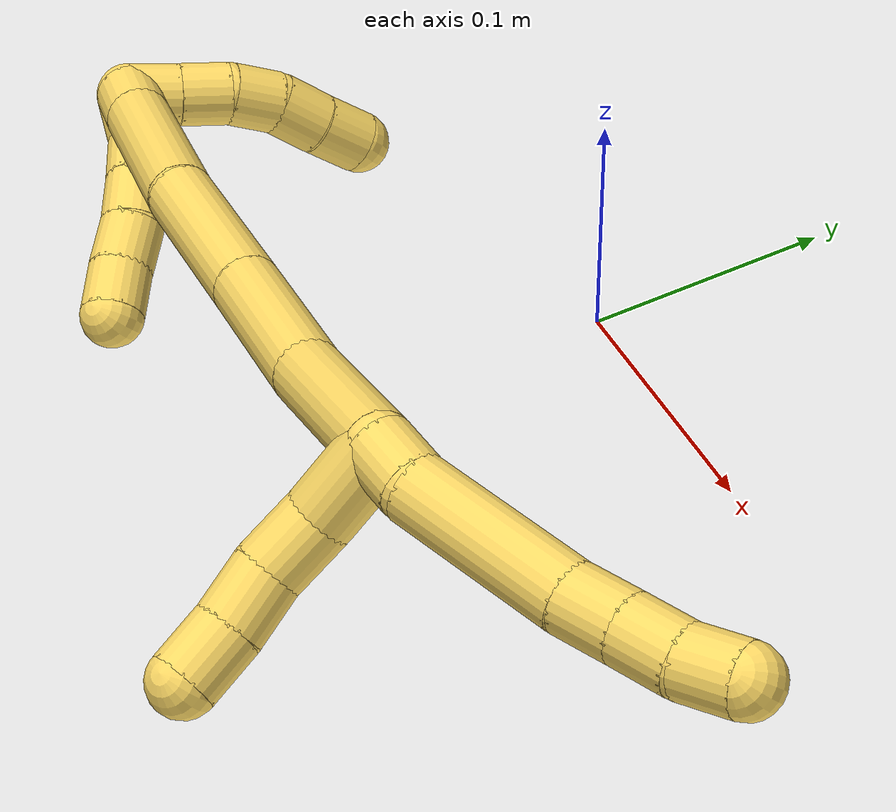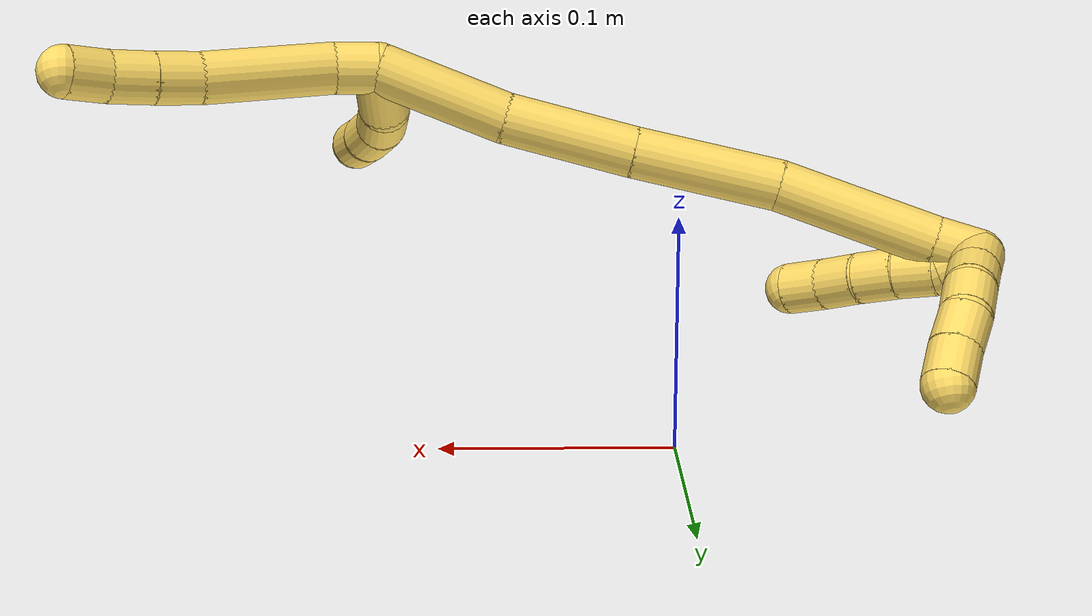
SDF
<sdf version="1.7">
 <world name="default">
  <model name="5">
   <static>0</static>
   <link name="5">
    <collision name="collision-cylinder-e_1_2_8">
     <pose>0.007673 0.007261 0.000513 -1.50023 0.811762 -0.761772</pose>
     <geometry><cylinder><radius>0.0125</radius><length>0.021153</length></cylinder></geometry>
     <surface>
      <friction><ode><mu>1.16</mu><mu2>1.16</mu2><slip1>0</slip1><slip2>0</slip2></ode></friction>
      <contact><ode><kp>1e+06</kp><kd>1</kd><max_vel>0</max_vel><min_depth>0.001</min_depth></ode></contact>
     </surface>
    </collision>
    <visual name="visual-cylinder-e_1_2_8">
     <pose>0.007673 0.007261 0.000513 -1.50023 0.811762 -0.761772</pose>
     <geometry><cylinder><radius>0.0125</radius><length>0.021153</length></cylinder></geometry>
     <material><ambient>1 0.858824 0.4 1</ambient></material>
    </visual>
    <collision name="collision-cylinder-e_2_8_9">
     <pose>0.034406 0.040207 -0.00324 -1.73541 0.631884 -0.73619</pose>
     <geometry><cylinder><radius>0.0125</radius><length>0.064536</length></cylinder></geometry>
     <surface>
      <friction><ode><mu>1.16</mu><mu2>1.16</mu2><slip1>0</slip1><slip2>0</slip2></ode></friction>
      <contact><ode><kp>1e+06</kp><kd>1</kd><max_vel>0</max_vel><min_depth>0.001</min_depth></ode></contact>
     </surface>
    </collision>
    <visual name="visual-cylinder-e_2_8_9">
     <pose>0.034406 0.040207 -0.00324 -1.73541 0.631884 -0.73619</pose>
     <geometry><cylinder><radius>0.0125</radius><length>0.064536</length></cylinder></geometry>
     <material><ambient>1 0.858824 0.4 1</ambient></material>
    </visual>
    <collision name="collision-cylinder-e_3_9_10">
     <pose>0.058918 0.07522 -0.008618 -1.68937 0.52595 -0.588754</pose>
     <geometry><cylinder><radius>0.0125</radius><length>0.021722</length></cylinder></geometry>
     <surface>
      <friction><ode><mu>1.16</mu><mu2>1.16</mu2><slip1>0</slip1><slip2>0</slip2></ode></friction>
      <contact><ode><kp>1e+06</kp><kd>1</kd><max_vel>0</max_vel><min_depth>0.001</min_depth></ode></contact>
     </surface>
    </collision>
    <visual name="visual-cylinder-e_3_9_10">
     <pose>0.058918 0.07522 -0.008618 -1.68937 0.52595 -0.588754</pose>
     <geometry><cylinder><radius>0.0125</radius><length>0.021722</length></cylinder></geometry>
     <material><ambient>1 0.858824 0.4 1</ambient></material>
    </visual>
    <collision name="collision-cylinder-e_4_10_11">
     <pose>0.069918 0.093867 -0.010402 -1.64282 0.535683 -0.573632</pose>
     <geometry><cylinder><radius>0.0125</radius><length>0.021733</length></cylinder></geometry>
     <surface>
      <friction><ode><mu>1.16</mu><mu2>1.16</mu2><slip1>0</slip1><slip2>0</slip2></ode></friction>
      <contact><ode><kp>1e+06</kp><kd>1</kd><max_vel>0</max_vel><min_depth>0.001</min_depth></ode></contact>
     </surface>
    </collision>
    <visual name="visual-cylinder-e_4_10_11">
     <pose>0.069918 0.093867 -0.010402 -1.64282 0.535683 -0.573632</pose>
     <geometry><cylinder><radius>0.0125</radius><length>0.021733</length></cylinder></geometry>
     <material><ambient>1 0.858824 0.4 1</ambient></material>
    </visual>
    <collision name="collision-cylinder-e_5_11_6">
     <pose>0.079043 0.11295 -0.011868 -1.65189 0.350315 -0.379262</pose>
     <geometry><cylinder><radius>0.0125</radius><length>0.020856</length></cylinder></geometry>
     <surface>
      <friction><ode><mu>1.16</mu><mu2>1.16</mu2><slip1>0</slip1><slip2>0</slip2></ode></friction>
      <contact><ode><kp>1e+06</kp><kd>1</kd><max_vel>0</max_vel><min_depth>0.001</min_depth></ode></contact>
     </surface>
    </collision>
    <visual name="visual-cylinder-e_5_11_6">
     <pose>0.079043 0.11295 -0.011868 -1.65189 0.350315 -0.379262</pose>
     <geometry><cylinder><radius>0.0125</radius><length>0.020856</length></cylinder></geometry>
     <material><ambient>1 0.858824 0.4 1</ambient></material>
    </visual>
    <collision name="collision-cylinder-e_1_2_12">
     <pose>0.009358 -0.01247 -0.003024 1.80873 0.630111 0.785717</pose>
     <geometry><cylinder><radius>0.0125</radius><length>0.031763</length></cylinder></geometry>
     <surface>
      <friction><ode><mu>1.16</mu><mu2>1.16</mu2><slip1>0</slip1><slip2>0</slip2></ode></friction>
      <contact><ode><kp>1e+06</kp><kd>1</kd><max_vel>0</max_vel><min_depth>0.001</min_depth></ode></contact>
     </surface>
    </collision>
    <visual name="visual-cylinder-e_1_2_12">
     <pose>0.009358 -0.01247 -0.003024 1.80873 0.630111 0.785717</pose>
     <geometry><cylinder><radius>0.0125</radius><length>0.031763</length></cylinder></geometry>
     <material><ambient>1 0.858824 0.4 1</ambient></material>
    </visual>
    <collision name="collision-cylinder-e_2_12_13">
     <pose>0.027107 -0.033375 -0.004725 1.41519 0.776715 0.673275</pose>
     <geometry><cylinder><radius>0.0125</radius><length>0.023943</length></cylinder></geometry>
     <surface>
      <friction><ode><mu>1.16</mu><mu2>1.16</mu2><slip1>0</slip1><slip2>0</slip2></ode></friction>
      <contact><ode><kp>1e+06</kp><kd>1</kd><max_vel>0</max_vel><min_depth>0.001</min_depth></ode></contact>
     </surface>
    </collision>
    <visual name="visual-cylinder-e_2_12_13">
     <pose>0.027107 -0.033375 -0.004725 1.41519 0.776715 0.673275</pose>
     <geometry><cylinder><radius>0.0125</radius><length>0.023943</length></cylinder></geometry>
     <material><ambient>1 0.858824 0.4 1</ambient></material>
    </visual>
    <collision name="collision-cylinder-e_3_13_14">
     <pose>0.04486 -0.047458 -0.001408 1.23144 1.00162 0.738906</pose>
     <geometry><cylinder><radius>0.0125</radius><length>0.022228</length></cylinder></geometry>
     <surface>
      <friction><ode><mu>1.16</mu><mu2>1.16</mu2><slip1>0</slip1><slip2>0</slip2></ode></friction>
      <contact><ode><kp>1e+06</kp><kd>1</kd><max_vel>0</max_vel><min_depth>0.001</min_depth></ode></contact>
     </surface>
    </collision>
    <visual name="visual-cylinder-e_3_13_14">
     <pose>0.04486 -0.047458 -0.001408 1.23144 1.00162 0.738906</pose>
     <geometry><cylinder><radius>0.0125</radius><length>0.022228</length></cylinder></geometry>
     <material><ambient>1 0.858824 0.4 1</ambient></material>
    </visual>
    <collision name="collision-cylinder-e_4_14_5">
     <pose>0.063006 -0.058959 0.003798 1.06878 0.920944 0.571093</pose>
     <geometry><cylinder><radius>0.0125</radius><length>0.022067</length></cylinder></geometry>
     <surface>
      <friction><ode><mu>1.16</mu><mu2>1.16</mu2><slip1>0</slip1><slip2>0</slip2></ode></friction>
      <contact><ode><kp>1e+06</kp><kd>1</kd><max_vel>0</max_vel><min_depth>0.001</min_depth></ode></contact>
     </surface>
    </collision>
    <visual name="visual-cylinder-e_4_14_5">
     <pose>0.063006 -0.058959 0.003798 1.06878 0.920944 0.571093</pose>
     <geometry><cylinder><radius>0.0125</radius><length>0.022067</length></cylinder></geometry>
     <material><ambient>1 0.858824 0.4 1</ambient></material>
    </visual>
    <collision name="collision-cylinder-e_1_2_15">
     <pose>-0.01917 -0.022744 -0.013039 2.09135 -0.63138 -1.02664</pose>
     <geometry><cylinder><radius>0.0125</radius><length>0.064955</length></cylinder></geometry>
     <surface>
      <friction><ode><mu>1.16</mu><mu2>1.16</mu2><slip1>0</slip1><slip2>0</slip2></ode></friction>
      <contact><ode><kp>1e+06</kp><kd>1</kd><max_vel>0</max_vel><min_depth>0.001</min_depth></ode></contact>
     </surface>
    </collision>
    <visual name="visual-cylinder-e_1_2_15">
     <pose>-0.01917 -0.022744 -0.013039 2.09135 -0.63138 -1.02664</pose>
     <geometry><cylinder><radius>0.0125</radius><length>0.064955</length></cylinder></geometry>
     <material><ambient>1 0.858824 0.4 1</ambient></material>
    </visual>
    <collision name="collision-cylinder-e_2_15_16">
     <pose>-0.060057 -0.066197 -0.036534 2.03836 -0.752396 -1.14139</pose>
     <geometry><cylinder><radius>0.0125</radius><length>0.063557</length></cylinder></geometry>
     <surface>
      <friction><ode><mu>1.16</mu><mu2>1.16</mu2><slip1>0</slip1><slip2>0</slip2></ode></friction>
      <contact><ode><kp>1e+06</kp><kd>1</kd><max_vel>0</max_vel><min_depth>0.001</min_depth></ode></contact>
     </surface>
    </collision>
    <visual name="visual-cylinder-e_2_15_16">
     <pose>-0.060057 -0.066197 -0.036534 2.03836 -0.752396 -1.14139</pose>
     <geometry><cylinder><radius>0.0125</radius><length>0.063557</length></cylinder></geometry>
     <material><ambient>1 0.858824 0.4 1</ambient></material>
    </visual>
    <collision name="collision-cylinder-e_3_16_17">
     <pose>-0.106548 -0.110217 -0.057527 1.99532 -0.769367 -1.12049</pose>
     <geometry><cylinder><radius>0.0125</radius><length>0.07122</length></cylinder></geometry>
     <surface>
      <friction><ode><mu>1.16</mu><mu2>1.16</mu2><slip1>0</slip1><slip2>0</slip2></ode></friction>
      <contact><ode><kp>1e+06</kp><kd>1</kd><max_vel>0</max_vel><min_depth>0.001</min_depth></ode></contact>
     </surface>
    </collision>
    <visual name="visual-cylinder-e_3_16_17">
     <pose>-0.106548 -0.110217 -0.057527 1.99532 -0.769367 -1.12049</pose>
     <geometry><cylinder><radius>0.0125</radius><length>0.07122</length></cylinder></geometry>
     <material><ambient>1 0.858824 0.4 1</ambient></material>
    </visual>
    <collision name="collision-cylinder-e_4_17_18">
     <pose>-0.157442 -0.157283 -0.084921 2.18795 -0.731004 -1.27521</pose>
     <geometry><cylinder><radius>0.0125</radius><length>0.078252</length></cylinder></geometry>
     <surface>
      <friction><ode><mu>1.16</mu><mu2>1.16</mu2><slip1>0</slip1><slip2>0</slip2></ode></friction>
      <contact><ode><kp>1e+06</kp><kd>1</kd><max_vel>0</max_vel><min_depth>0.001</min_depth></ode></contact>
     </surface>
    </collision>
    <visual name="visual-cylinder-e_4_17_18">
     <pose>-0.157442 -0.157283 -0.084921 2.18795 -0.731004 -1.27521</pose>
     <geometry><cylinder><radius>0.0125</radius><length>0.078252</length></cylinder></geometry>
     <material><ambient>1 0.858824 0.4 1</ambient></material>
    </visual>
    <collision name="collision-cylinder-e_5_18_1">
     <pose>-0.191381 -0.187399 -0.106207 2.17895 -0.789766 -1.34701</pose>
     <geometry><cylinder><radius>0.0125</radius><length>0.022016</length></cylinder></geometry>
     <surface>
      <friction><ode><mu>1.16</mu><mu2>1.16</mu2><slip1>0</slip1><slip2>0</slip2></ode></friction>
      <contact><ode><kp>1e+06</kp><kd>1</kd><max_vel>0</max_vel><min_depth>0.001</min_depth></ode></contact>
     </surface>
    </collision>
    <visual name="visual-cylinder-e_5_18_1">
     <pose>-0.191381 -0.187399 -0.106207 2.17895 -0.789766 -1.34701</pose>
     <geometry><cylinder><radius>0.0125</radius><length>0.022016</length></cylinder></geometry>
     <material><ambient>1 0.858824 0.4 1</ambient></material>
    </visual>
    <collision name="collision-cylinder-e_1_1_19">
     <pose>-0.189657 -0.191102 -0.112006 -2.04725 1.26704 -1.75675</pose>
     <geometry><cylinder><radius>0.0125</radius><length>0.02</length></cylinder></geometry>
     <surface>
      <friction><ode><mu>1.16</mu><mu2>1.16</mu2><slip1>0</slip1><slip2>0</slip2></ode></friction>
      <contact><ode><kp>1e+06</kp><kd>1</kd><max_vel>0</max_vel><min_depth>0.001</min_depth></ode></contact>
     </surface>
    </collision>
    <visual name="visual-cylinder-e_1_1_19">
     <pose>-0.189657 -0.191102 -0.112006 -2.04725 1.26704 -1.75675</pose>
     <geometry><cylinder><radius>0.0125</radius><length>0.02</length></cylinder></geometry>
     <material><ambient>1 0.858824 0.4 1</ambient></material>
    </visual>
    <collision name="collision-cylinder-e_2_19_20">
     <pose>-0.170418 -0.186906 -0.111479 -0.680662 1.32396 -0.538501</pose>
     <geometry><cylinder><radius>0.0125</radius><length>0.02</length></cylinder></geometry>
     <surface>
      <friction><ode><mu>1.16</mu><mu2>1.16</mu2><slip1>0</slip1><slip2>0</slip2></ode></friction>
      <contact><ode><kp>1e+06</kp><kd>1</kd><max_vel>0</max_vel><min_depth>0.001</min_depth></ode></contact>
     </surface>
    </collision>
    <visual name="visual-cylinder-e_2_19_20">
     <pose>-0.170418 -0.186906 -0.111479 -0.680662 1.32396 -0.538501</pose>
     <geometry><cylinder><radius>0.0125</radius><length>0.02</length></cylinder></geometry>
     <material><ambient>1 0.858824 0.4 1</ambient></material>
    </visual>
    <collision name="collision-cylinder-e_3_20_21">
     <pose>-0.150895 -0.184589 -0.107892 -0.432403 1.38378 -0.360004</pose>
     <geometry><cylinder><radius>0.0125</radius><length>0.02</length></cylinder></geometry>
     <surface>
      <friction><ode><mu>1.16</mu><mu2>1.16</mu2><slip1>0</slip1><slip2>0</slip2></ode></friction>
      <contact><ode><kp>1e+06</kp><kd>1</kd><max_vel>0</max_vel><min_depth>0.001</min_depth></ode></contact>
     </surface>
    </collision>
    <visual name="visual-cylinder-e_3_20_21">
     <pose>-0.150895 -0.184589 -0.107892 -0.432403 1.38378 -0.360004</pose>
     <geometry><cylinder><radius>0.0125</radius><length>0.02</length></cylinder></geometry>
     <material><ambient>1 0.858824 0.4 1</ambient></material>
    </visual>
    <collision name="collision-cylinder-e_4_21_22">
     <pose>-0.131263 -0.184493 -0.104368 0.356087 1.37366 0.293008</pose>
     <geometry><cylinder><radius>0.0125</radius><length>0.02</length></cylinder></geometry>
     <surface>
      <friction><ode><mu>1.16</mu><mu2>1.16</mu2><slip1>0</slip1><slip2>0</slip2></ode></friction>
      <contact><ode><kp>1e+06</kp><kd>1</kd><max_vel>0</max_vel><min_depth>0.001</min_depth></ode></contact>
     </surface>
    </collision>
    <visual name="visual-cylinder-e_4_21_22">
     <pose>-0.131263 -0.184493 -0.104368 0.356087 1.37366 0.293008</pose>
     <geometry><cylinder><radius>0.0125</radius><length>0.02</length></cylinder></geometry>
     <material><ambient>1 0.858824 0.4 1</ambient></material>
    </visual>
    <collision name="collision-cylinder-e_5_22_4">
     <pose>-0.111635 -0.184918 -0.10067 -0.137648 1.38163 -0.113851</pose>
     <geometry><cylinder><radius>0.0125</radius><length>0.02</length></cylinder></geometry>
     <surface>
      <friction><ode><mu>1.16</mu><mu2>1.16</mu2><slip1>0</slip1><slip2>0</slip2></ode></friction>
      <contact><ode><kp>1e+06</kp><kd>1</kd><max_vel>0</max_vel><min_depth>0.001</min_depth></ode></contact>
     </surface>
    </collision>
    <visual name="visual-cylinder-e_5_22_4">
     <pose>-0.111635 -0.184918 -0.10067 -0.137648 1.38163 -0.113851</pose>
     <geometry><cylinder><radius>0.0125</radius><length>0.02</length></cylinder></geometry>
     <material><ambient>1 0.858824 0.4 1</ambient></material>
    </visual>
    <collision name="collision-cylinder-e_1_1_23">
     <pose>-0.200411 -0.186407 -0.117303 -2.30745 -0.12153 0.272926</pose>
     <geometry><cylinder><radius>0.0125</radius><length>0.02</length></cylinder></geometry>
     <surface>
      <friction><ode><mu>1.16</mu><mu2>1.16</mu2><slip1>0</slip1><slip2>0</slip2></ode></friction>
      <contact><ode><kp>1e+06</kp><kd>1</kd><max_vel>0</max_vel><min_depth>0.001</min_depth></ode></contact>
     </surface>
    </collision>
    <visual name="visual-cylinder-e_1_1_23">
     <pose>-0.200411 -0.186407 -0.117303 -2.30745 -0.12153 0.272926</pose>
     <geometry><cylinder><radius>0.0125</radius><length>0.02</length></cylinder></geometry>
     <material><ambient>1 0.858824 0.4 1</ambient></material>
    </visual>
    <collision name="collision-cylinder-e_2_23_24">
     <pose>-0.20312 -0.171688 -0.130567 -2.30103 -0.15026 0.333722</pose>
     <geometry><cylinder><radius>0.0125</radius><length>0.02</length></cylinder></geometry>
     <surface>
      <friction><ode><mu>1.16</mu><mu2>1.16</mu2><slip1>0</slip1><slip2>0</slip2></ode></friction>
      <contact><ode><kp>1e+06</kp><kd>1</kd><max_vel>0</max_vel><min_depth>0.001</min_depth></ode></contact>
     </surface>
    </collision>
    <visual name="visual-cylinder-e_2_23_24">
     <pose>-0.20312 -0.171688 -0.130567 -2.30103 -0.15026 0.333722</pose>
     <geometry><cylinder><radius>0.0125</radius><length>0.02</length></cylinder></geometry>
     <material><ambient>1 0.858824 0.4 1</ambient></material>
    </visual>
    <collision name="collision-cylinder-e_3_24_25">
     <pose>-0.204772 -0.158603 -0.145364 -2.53275 -0.015457 0.049189</pose>
     <geometry><cylinder><radius>0.0125</radius><length>0.02</length></cylinder></geometry>
     <surface>
      <friction><ode><mu>1.16</mu><mu2>1.16</mu2><slip1>0</slip1><slip2>0</slip2></ode></friction>
      <contact><ode><kp>1e+06</kp><kd>1</kd><max_vel>0</max_vel><min_depth>0.001</min_depth></ode></contact>
     </surface>
    </collision>
    <visual name="visual-cylinder-e_3_24_25">
     <pose>-0.204772 -0.158603 -0.145364 -2.53275 -0.015457 0.049189</pose>
     <geometry><cylinder><radius>0.0125</radius><length>0.02</length></cylinder></geometry>
     <material><ambient>1 0.858824 0.4 1</ambient></material>
    </visual>
    <collision name="collision-cylinder-e_4_25_26">
     <pose>-0.202878 -0.148409 -0.162271 -2.66663 0.206359 -0.808473</pose>
     <geometry><cylinder><radius>0.0125</radius><length>0.02</length></cylinder></geometry>
     <surface>
      <friction><ode><mu>1.16</mu><mu2>1.16</mu2><slip1>0</slip1><slip2>0</slip2></ode></friction>
      <contact><ode><kp>1e+06</kp><kd>1</kd><max_vel>0</max_vel><min_depth>0.001</min_depth></ode></contact>
     </surface>
    </collision>
    <visual name="visual-cylinder-e_4_25_26">
     <pose>-0.202878 -0.148409 -0.162271 -2.66663 0.206359 -0.808473</pose>
     <geometry><cylinder><radius>0.0125</radius><length>0.02</length></cylinder></geometry>
     <material><ambient>1 0.858824 0.4 1</ambient></material>
    </visual>
    <collision name="collision-cylinder-e_5_26_3">
     <pose>-0.199432 -0.139762 -0.179956 -2.70686 0.140091 -0.615182</pose>
     <geometry><cylinder><radius>0.0125</radius><length>0.02</length></cylinder></geometry>
     <surface>
      <friction><ode><mu>1.16</mu><mu2>1.16</mu2><slip1>0</slip1><slip2>0</slip2></ode></friction>
      <contact><ode><kp>1e+06</kp><kd>1</kd><max_vel>0</max_vel><min_depth>0.001</min_depth></ode></contact>
     </surface>
    </collision>
    <visual name="visual-cylinder-e_5_26_3">
     <pose>-0.199432 -0.139762 -0.179956 -2.70686 0.140091 -0.615182</pose>
     <geometry><cylinder><radius>0.0125</radius><length>0.02</length></cylinder></geometry>
     <material><ambient>1 0.858824 0.4 1</ambient></material>
    </visual>
    <collision name="collision-sphere-3">
     <pose>-0.198036 -0.135592 -0.188937 0 -0 0</pose>
     <geometry><sphere><radius>0.0125</radius></sphere></geometry>
     <surface>
      <friction><ode><mu>1.16</mu><mu2>1.16</mu2><slip1>0</slip1><slip2>0</slip2></ode></friction>
      <contact><ode><kp>1e+06</kp><kd>1</kd><max_vel>0</max_vel><min_depth>0.001</min_depth></ode></contact>
     </surface>
    </collision>
    <visual name="visual-sphere-3">
     <pose>-0.198036 -0.135592 -0.188937 0 -0 0</pose>
     <geometry><sphere><radius>0.0125</radius></sphere></geometry>
     <material><ambient>1 0.858824 0.4 1</ambient></material>
    </visual>
    <collision name="collision-sphere-26">
     <pose>-0.200829 -0.143933 -0.170975 0 -0 0</pose>
     <geometry><sphere><radius>0.0125</radius></sphere></geometry>
     <surface>
      <friction><ode><mu>1.16</mu><mu2>1.16</mu2><slip1>0</slip1><slip2>0</slip2></ode></friction>
      <contact><ode><kp>1e+06</kp><kd>1</kd><max_vel>0</max_vel><min_depth>0.001</min_depth></ode></contact>
     </surface>
    </collision>
    <visual name="visual-sphere-26">
     <pose>-0.200829 -0.143933 -0.170975 0 -0 0</pose>
     <geometry><sphere><radius>0.0125</radius></sphere></geometry>
     <material><ambient>1 0.858824 0.4 1</ambient></material>
    </visual>
    <collision name="collision-sphere-25">
     <pose>-0.204926 -0.152885 -0.153567 0 -0 0</pose>
     <geometry><sphere><radius>0.0125</radius></sphere></geometry>
     <surface>
      <friction><ode><mu>1.16</mu><mu2>1.16</mu2><slip1>0</slip1><slip2>0</slip2></ode></friction>
      <contact><ode><kp>1e+06</kp><kd>1</kd><max_vel>0</max_vel><min_depth>0.001</min_depth></ode></contact>
     </surface>
    </collision>
    <visual name="visual-sphere-25">
     <pose>-0.204926 -0.152885 -0.153567 0 -0 0</pose>
     <geometry><sphere><radius>0.0125</radius></sphere></geometry>
     <material><ambient>1 0.858824 0.4 1</ambient></material>
    </visual>
    <collision name="collision-sphere-24">
     <pose>-0.204617 -0.164322 -0.137162 0 -0 0</pose>
     <geometry><sphere><radius>0.0125</radius></sphere></geometry>
     <surface>
      <friction><ode><mu>1.16</mu><mu2>1.16</mu2><slip1>0</slip1><slip2>0</slip2></ode></friction>
      <contact><ode><kp>1e+06</kp><kd>1</kd><max_vel>0</max_vel><min_depth>0.001</min_depth></ode></contact>
     </surface>
    </collision>
    <visual name="visual-sphere-24">
     <pose>-0.204617 -0.164322 -0.137162 0 -0 0</pose>
     <geometry><sphere><radius>0.0125</radius></sphere></geometry>
     <material><ambient>1 0.858824 0.4 1</ambient></material>
    </visual>
    <collision name="collision-sphere-23">
     <pose>-0.201623 -0.179054 -0.123972 0 -0 0</pose>
     <geometry><sphere><radius>0.0125</radius></sphere></geometry>
     <surface>
      <friction><ode><mu>1.16</mu><mu2>1.16</mu2><slip1>0</slip1><slip2>0</slip2></ode></friction>
      <contact><ode><kp>1e+06</kp><kd>1</kd><max_vel>0</max_vel><min_depth>0.001</min_depth></ode></contact>
     </surface>
    </collision>
    <visual name="visual-sphere-23">
     <pose>-0.201623 -0.179054 -0.123972 0 -0 0</pose>
     <geometry><sphere><radius>0.0125</radius></sphere></geometry>
     <material><ambient>1 0.858824 0.4 1</ambient></material>
    </visual>
    <collision name="collision-sphere-4">
     <pose>-0.101814 -0.18466 -0.098807 0 -0 0</pose>
     <geometry><sphere><radius>0.0125</radius></sphere></geometry>
     <surface>
      <friction><ode><mu>1.16</mu><mu2>1.16</mu2><slip1>0</slip1><slip2>0</slip2></ode></friction>
      <contact><ode><kp>1e+06</kp><kd>1</kd><max_vel>0</max_vel><min_depth>0.001</min_depth></ode></contact>
     </surface>
    </collision>
    <visual name="visual-sphere-4">
     <pose>-0.101814 -0.18466 -0.098807 0 -0 0</pose>
     <geometry><sphere><radius>0.0125</radius></sphere></geometry>
     <material><ambient>1 0.858824 0.4 1</ambient></material>
    </visual>
    <collision name="collision-sphere-22">
     <pose>-0.121457 -0.185176 -0.102533 0 -0 0</pose>
     <geometry><sphere><radius>0.0125</radius></sphere></geometry>
     <surface>
      <friction><ode><mu>1.16</mu><mu2>1.16</mu2><slip1>0</slip1><slip2>0</slip2></ode></friction>
      <contact><ode><kp>1e+06</kp><kd>1</kd><max_vel>0</max_vel><min_depth>0.001</min_depth></ode></contact>
     </surface>
    </collision>
    <visual name="visual-sphere-22">
     <pose>-0.121457 -0.185176 -0.102533 0 -0 0</pose>
     <geometry><sphere><radius>0.0125</radius></sphere></geometry>
     <material><ambient>1 0.858824 0.4 1</ambient></material>
    </visual>
    <collision name="collision-sphere-21">
     <pose>-0.141069 -0.18381 -0.106204 0 -0 0</pose>
     <geometry><sphere><radius>0.0125</radius></sphere></geometry>
     <surface>
      <friction><ode><mu>1.16</mu><mu2>1.16</mu2><slip1>0</slip1><slip2>0</slip2></ode></friction>
      <contact><ode><kp>1e+06</kp><kd>1</kd><max_vel>0</max_vel><min_depth>0.001</min_depth></ode></contact>
     </surface>
    </collision>
    <visual name="visual-sphere-21">
     <pose>-0.141069 -0.18381 -0.106204 0 -0 0</pose>
     <geometry><sphere><radius>0.0125</radius></sphere></geometry>
     <material><ambient>1 0.858824 0.4 1</ambient></material>
    </visual>
    <collision name="collision-sphere-20">
     <pose>-0.160721 -0.185368 -0.10958 0 -0 0</pose>
     <geometry><sphere><radius>0.0125</radius></sphere></geometry>
     <surface>
      <friction><ode><mu>1.16</mu><mu2>1.16</mu2><slip1>0</slip1><slip2>0</slip2></ode></friction>
      <contact><ode><kp>1e+06</kp><kd>1</kd><max_vel>0</max_vel><min_depth>0.001</min_depth></ode></contact>
     </surface>
    </collision>
    <visual name="visual-sphere-20">
     <pose>-0.160721 -0.185368 -0.10958 0 -0 0</pose>
     <geometry><sphere><radius>0.0125</radius></sphere></geometry>
     <material><ambient>1 0.858824 0.4 1</ambient></material>
    </visual>
    <collision name="collision-sphere-6">
     <pose>0.082622 0.122712 -0.012661 0 -0 0</pose>
     <geometry><sphere><radius>0.0125</radius></sphere></geometry>
     <surface>
      <friction><ode><mu>1.16</mu><mu2>1.16</mu2><slip1>0</slip1><slip2>0</slip2></ode></friction>
      <contact><ode><kp>1e+06</kp><kd>1</kd><max_vel>0</max_vel><min_depth>0.001</min_depth></ode></contact>
     </surface>
    </collision>
    <visual name="visual-sphere-6">
     <pose>0.082622 0.122712 -0.012661 0 -0 0</pose>
     <geometry><sphere><radius>0.0125</radius></sphere></geometry>
     <material><ambient>1 0.858824 0.4 1</ambient></material>
    </visual>
    <collision name="collision-sphere-11">
     <pose>0.075464 0.103188 -0.011074 0 -0 0</pose>
     <geometry><sphere><radius>0.0125</radius></sphere></geometry>
     <surface>
      <friction><ode><mu>1.16</mu><mu2>1.16</mu2><slip1>0</slip1><slip2>0</slip2></ode></friction>
      <contact><ode><kp>1e+06</kp><kd>1</kd><max_vel>0</max_vel><min_depth>0.001</min_depth></ode></contact>
     </surface>
    </collision>
    <visual name="visual-sphere-11">
     <pose>0.075464 0.103188 -0.011074 0 -0 0</pose>
     <geometry><sphere><radius>0.0125</radius></sphere></geometry>
     <material><ambient>1 0.858824 0.4 1</ambient></material>
    </visual>
    <collision name="collision-sphere-10">
     <pose>0.064371 0.084547 -0.00973 0 -0 0</pose>
     <geometry><sphere><radius>0.0125</radius></sphere></geometry>
     <surface>
      <friction><ode><mu>1.16</mu><mu2>1.16</mu2><slip1>0</slip1><slip2>0</slip2></ode></friction>
      <contact><ode><kp>1e+06</kp><kd>1</kd><max_vel>0</max_vel><min_depth>0.001</min_depth></ode></contact>
     </surface>
    </collision>
    <visual name="visual-sphere-10">
     <pose>0.064371 0.084547 -0.00973 0 -0 0</pose>
     <geometry><sphere><radius>0.0125</radius></sphere></geometry>
     <material><ambient>1 0.858824 0.4 1</ambient></material>
    </visual>
    <collision name="collision-sphere-9">
     <pose>0.053466 0.065893 -0.007507 0 -0 0</pose>
     <geometry><sphere><radius>0.0125</radius></sphere></geometry>
     <surface>
      <friction><ode><mu>1.16</mu><mu2>1.16</mu2><slip1>0</slip1><slip2>0</slip2></ode></friction>
      <contact><ode><kp>1e+06</kp><kd>1</kd><max_vel>0</max_vel><min_depth>0.001</min_depth></ode></contact>
     </surface>
    </collision>
    <visual name="visual-sphere-9">
     <pose>0.053466 0.065893 -0.007507 0 -0 0</pose>
     <geometry><sphere><radius>0.0125</radius></sphere></geometry>
     <material><ambient>1 0.858824 0.4 1</ambient></material>
    </visual>
    <collision name="collision-sphere-2">
     <geometry><sphere><radius>0.0125</radius></sphere></geometry>
     <surface>
      <friction><ode><mu>1.16</mu><mu2>1.16</mu2><slip1>0</slip1><slip2>0</slip2></ode></friction>
      <contact><ode><kp>1e+06</kp><kd>1</kd><max_vel>0</max_vel><min_depth>0.001</min_depth></ode></contact>
     </surface>
    </collision>
    <visual name="visual-sphere-2">
     <geometry><sphere><radius>0.0125</radius></sphere></geometry>
     <material><ambient>1 0.858824 0.4 1</ambient></material>
    </visual>
    <collision name="collision-sphere-19">
     <pose>-0.180114 -0.188444 -0.113378 0 -0 0</pose>
     <geometry><sphere><radius>0.0125</radius></sphere></geometry>
     <surface>
      <friction><ode><mu>1.16</mu><mu2>1.16</mu2><slip1>0</slip1><slip2>0</slip2></ode></friction>
      <contact><ode><kp>1e+06</kp><kd>1</kd><max_vel>0</max_vel><min_depth>0.001</min_depth></ode></contact>
     </surface>
    </collision>
    <visual name="visual-sphere-19">
     <pose>-0.180114 -0.188444 -0.113378 0 -0 0</pose>
     <geometry><sphere><radius>0.0125</radius></sphere></geometry>
     <material><ambient>1 0.858824 0.4 1</ambient></material>
    </visual>
    <collision name="collision-sphere-8">
     <pose>0.015347 0.014522 0.001026 0 -0 0</pose>
     <geometry><sphere><radius>0.0125</radius></sphere></geometry>
     <surface>
      <friction><ode><mu>1.16</mu><mu2>1.16</mu2><slip1>0</slip1><slip2>0</slip2></ode></friction>
      <contact><ode><kp>1e+06</kp><kd>1</kd><max_vel>0</max_vel><min_depth>0.001</min_depth></ode></contact>
     </surface>
    </collision>
    <visual name="visual-sphere-8">
     <pose>0.015347 0.014522 0.001026 0 -0 0</pose>
     <geometry><sphere><radius>0.0125</radius></sphere></geometry>
     <material><ambient>1 0.858824 0.4 1</ambient></material>
    </visual>
    <collision name="collision-sphere-12">
     <pose>0.018716 -0.02494 -0.006049 0 -0 0</pose>
     <geometry><sphere><radius>0.0125</radius></sphere></geometry>
     <surface>
      <friction><ode><mu>1.16</mu><mu2>1.16</mu2><slip1>0</slip1><slip2>0</slip2></ode></friction>
      <contact><ode><kp>1e+06</kp><kd>1</kd><max_vel>0</max_vel><min_depth>0.001</min_depth></ode></contact>
     </surface>
    </collision>
    <visual name="visual-sphere-12">
     <pose>0.018716 -0.02494 -0.006049 0 -0 0</pose>
     <geometry><sphere><radius>0.0125</radius></sphere></geometry>
     <material><ambient>1 0.858824 0.4 1</ambient></material>
    </visual>
    <collision name="collision-sphere-13">
     <pose>0.035498 -0.04181 -0.003402 0 -0 0</pose>
     <geometry><sphere><radius>0.0125</radius></sphere></geometry>
     <surface>
      <friction><ode><mu>1.16</mu><mu2>1.16</mu2><slip1>0</slip1><slip2>0</slip2></ode></friction>
      <contact><ode><kp>1e+06</kp><kd>1</kd><max_vel>0</max_vel><min_depth>0.001</min_depth></ode></contact>
     </surface>
    </collision>
    <visual name="visual-sphere-13">
     <pose>0.035498 -0.04181 -0.003402 0 -0 0</pose>
     <geometry><sphere><radius>0.0125</radius></sphere></geometry>
     <material><ambient>1 0.858824 0.4 1</ambient></material>
    </visual>
    <collision name="collision-sphere-14">
     <pose>0.054222 -0.053107 0.000586 0 -0 0</pose>
     <geometry><sphere><radius>0.0125</radius></sphere></geometry>
     <surface>
      <friction><ode><mu>1.16</mu><mu2>1.16</mu2><slip1>0</slip1><slip2>0</slip2></ode></friction>
      <contact><ode><kp>1e+06</kp><kd>1</kd><max_vel>0</max_vel><min_depth>0.001</min_depth></ode></contact>
     </surface>
    </collision>
    <visual name="visual-sphere-14">
     <pose>0.054222 -0.053107 0.000586 0 -0 0</pose>
     <geometry><sphere><radius>0.0125</radius></sphere></geometry>
     <material><ambient>1 0.858824 0.4 1</ambient></material>
    </visual>
    <collision name="collision-sphere-5">
     <pose>0.07179 -0.064811 0.00701 0 -0 0</pose>
     <geometry><sphere><radius>0.0125</radius></sphere></geometry>
     <surface>
      <friction><ode><mu>1.16</mu><mu2>1.16</mu2><slip1>0</slip1><slip2>0</slip2></ode></friction>
      <contact><ode><kp>1e+06</kp><kd>1</kd><max_vel>0</max_vel><min_depth>0.001</min_depth></ode></contact>
     </surface>
    </collision>
    <visual name="visual-sphere-5">
     <pose>0.07179 -0.064811 0.00701 0 -0 0</pose>
     <geometry><sphere><radius>0.0125</radius></sphere></geometry>
     <material><ambient>1 0.858824 0.4 1</ambient></material>
    </visual>
    <collision name="collision-sphere-15">
     <pose>-0.03834 -0.045488 -0.026078 0 -0 0</pose>
     <geometry><sphere><radius>0.0125</radius></sphere></geometry>
     <surface>
      <friction><ode><mu>1.16</mu><mu2>1.16</mu2><slip1>0</slip1><slip2>0</slip2></ode></friction>
      <contact><ode><kp>1e+06</kp><kd>1</kd><max_vel>0</max_vel><min_depth>0.001</min_depth></ode></contact>
     </surface>
    </collision>
    <visual name="visual-sphere-15">
     <pose>-0.03834 -0.045488 -0.026078 0 -0 0</pose>
     <geometry><sphere><radius>0.0125</radius></sphere></geometry>
     <material><ambient>1 0.858824 0.4 1</ambient></material>
    </visual>
    <collision name="collision-sphere-16">
     <pose>-0.081775 -0.086907 -0.046991 0 -0 0</pose>
     <geometry><sphere><radius>0.0125</radius></sphere></geometry>
     <surface>
      <friction><ode><mu>1.16</mu><mu2>1.16</mu2><slip1>0</slip1><slip2>0</slip2></ode></friction>
      <contact><ode><kp>1e+06</kp><kd>1</kd><max_vel>0</max_vel><min_depth>0.001</min_depth></ode></contact>
     </surface>
    </collision>
    <visual name="visual-sphere-16">
     <pose>-0.081775 -0.086907 -0.046991 0 -0 0</pose>
     <geometry><sphere><radius>0.0125</radius></sphere></geometry>
     <material><ambient>1 0.858824 0.4 1</ambient></material>
    </visual>
    <collision name="collision-sphere-17">
     <pose>-0.131321 -0.133527 -0.068064 0 -0 0</pose>
     <geometry><sphere><radius>0.0125</radius></sphere></geometry>
     <surface>
      <friction><ode><mu>1.16</mu><mu2>1.16</mu2><slip1>0</slip1><slip2>0</slip2></ode></friction>
      <contact><ode><kp>1e+06</kp><kd>1</kd><max_vel>0</max_vel><min_depth>0.001</min_depth></ode></contact>
     </surface>
    </collision>
    <visual name="visual-sphere-17">
     <pose>-0.131321 -0.133527 -0.068064 0 -0 0</pose>
     <geometry><sphere><radius>0.0125</radius></sphere></geometry>
     <material><ambient>1 0.858824 0.4 1</ambient></material>
    </visual>
    <collision name="collision-sphere-18">
     <pose>-0.183563 -0.181039 -0.101779 0 -0 0</pose>
     <geometry><sphere><radius>0.0125</radius></sphere></geometry>
     <surface>
      <friction><ode><mu>1.16</mu><mu2>1.16</mu2><slip1>0</slip1><slip2>0</slip2></ode></friction>
      <contact><ode><kp>1e+06</kp><kd>1</kd><max_vel>0</max_vel><min_depth>0.001</min_depth></ode></contact>
     </surface>
    </collision>
    <visual name="visual-sphere-18">
     <pose>-0.183563 -0.181039 -0.101779 0 -0 0</pose>
     <geometry><sphere><radius>0.0125</radius></sphere></geometry>
     <material><ambient>1 0.858824 0.4 1</ambient></material>
    </visual>
    <collision name="collision-sphere-1">
     <pose>-0.199199 -0.193759 -0.110635 0 -0 0</pose>
     <geometry><sphere><radius>0.0125</radius></sphere></geometry>
     <surface>
      <friction><ode><mu>1.16</mu><mu2>1.16</mu2><slip1>0</slip1><slip2>0</slip2></ode></friction>
      <contact><ode><kp>1e+06</kp><kd>1</kd><max_vel>0</max_vel><min_depth>0.001</min_depth></ode></contact>
     </surface>
    </collision>
    <visual name="visual-sphere-1">
     <pose>-0.199199 -0.193759 -0.110635 0 -0 0</pose>
     <geometry><sphere><radius>0.0125</radius></sphere></geometry>
     <material><ambient>1 0.858824 0.4 1</ambient></material>
    </visual>
    <inertial>
     <pose>-0.072413 -0.079305 -0.056937 0 -0 0</pose>
     <mass>0.75</mass>
     <inertia>
      <ixx>-2.6e-05</ixx>
      <ixy>0</ixy>
      <ixz>0</ixz>
      <iyy>-4.8e-05</iyy>
      <iyz>0</iyz>
      <izz>9.6e-05</izz>
     </inertia>
    </inertial>
   </link>
   <pose>0.130232 -0.158096 0.134824 0.507377 0.449194 -0.525989</pose>
  </model>
 </world>
</sdf>
